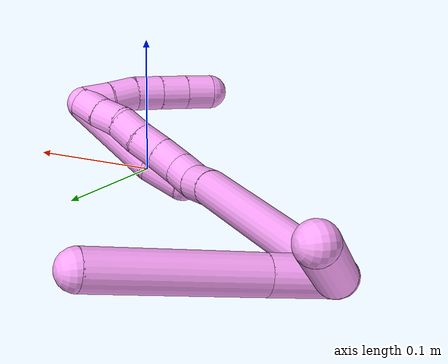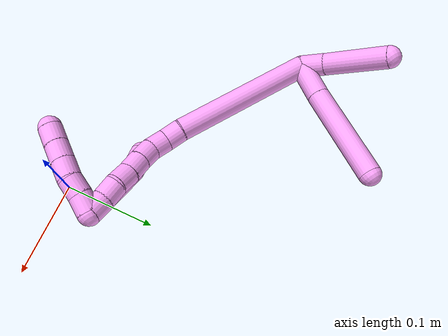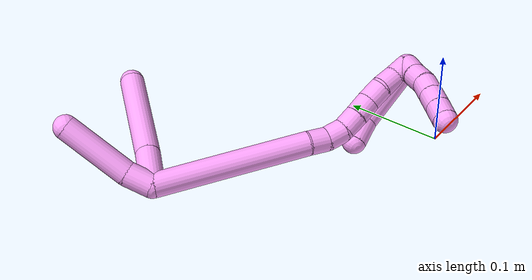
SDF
<sdf version="1.7">
 <world name="default">
  <model name="4">
   <static>0</static>
   <link name="4">
    <collision name="collision-cylinder-e_1_2_8">
     <pose>0.000494 -0.003559 0.021245 0.165994 0.022913 0.001906</pose>
     <geometry><cylinder><radius>0.0125</radius><length>0.043094</length></cylinder></geometry>
     <surface>
      <friction><ode><mu>1.16</mu><mu2>1.16</mu2><slip1>0</slip1><slip2>0</slip2></ode></friction>
      <contact><ode><kp>1e+06</kp><kd>1</kd><max_vel>0</max_vel><min_depth>0.001</min_depth></ode></contact>
     </surface>
    </collision>
    <visual name="visual-cylinder-e_1_2_8">
     <pose>0.000494 -0.003559 0.021245 0.165994 0.022913 0.001906</pose>
     <geometry><cylinder><radius>0.0125</radius><length>0.043094</length></cylinder></geometry>
     <material><ambient>1 0.65098 0.996078 1</ambient></material>
    </visual>
    <collision name="collision-cylinder-e_2_8_6">
     <pose>-0.0001 -0.014426 0.09543 0.137172 -0.020339 -0.001397</pose>
     <geometry><cylinder><radius>0.0125</radius><length>0.106906</length></cylinder></geometry>
     <surface>
      <friction><ode><mu>1.16</mu><mu2>1.16</mu2><slip1>0</slip1><slip2>0</slip2></ode></friction>
      <contact><ode><kp>1e+06</kp><kd>1</kd><max_vel>0</max_vel><min_depth>0.001</min_depth></ode></contact>
     </surface>
    </collision>
    <visual name="visual-cylinder-e_2_8_6">
     <pose>-0.0001 -0.014426 0.09543 0.137172 -0.020339 -0.001397</pose>
     <geometry><cylinder><radius>0.0125</radius><length>0.106906</length></cylinder></geometry>
     <material><ambient>1 0.65098 0.996078 1</ambient></material>
    </visual>
    <collision name="collision-cylinder-e_1_2_9">
     <pose>-0.009395 0.006274 0.007635 -0.687882 -0.76012 0.284242</pose>
     <geometry><cylinder><radius>0.0125</radius><length>0.027271</length></cylinder></geometry>
     <surface>
      <friction><ode><mu>1.16</mu><mu2>1.16</mu2><slip1>0</slip1><slip2>0</slip2></ode></friction>
      <contact><ode><kp>1e+06</kp><kd>1</kd><max_vel>0</max_vel><min_depth>0.001</min_depth></ode></contact>
     </surface>
    </collision>
    <visual name="visual-cylinder-e_1_2_9">
     <pose>-0.009395 0.006274 0.007635 -0.687882 -0.76012 0.284242</pose>
     <geometry><cylinder><radius>0.0125</radius><length>0.027271</length></cylinder></geometry>
     <material><ambient>1 0.65098 0.996078 1</ambient></material>
    </visual>
    <collision name="collision-cylinder-e_2_9_5">
     <pose>-0.046667 0.021715 0.036746 -0.403426 -0.873538 0.190355</pose>
     <geometry><cylinder><radius>0.0125</radius><length>0.072729</length></cylinder></geometry>
     <surface>
      <friction><ode><mu>1.16</mu><mu2>1.16</mu2><slip1>0</slip1><slip2>0</slip2></ode></friction>
      <contact><ode><kp>1e+06</kp><kd>1</kd><max_vel>0</max_vel><min_depth>0.001</min_depth></ode></contact>
     </surface>
    </collision>
    <visual name="visual-cylinder-e_2_9_5">
     <pose>-0.046667 0.021715 0.036746 -0.403426 -0.873538 0.190355</pose>
     <geometry><cylinder><radius>0.0125</radius><length>0.072729</length></cylinder></geometry>
     <material><ambient>1 0.65098 0.996078 1</ambient></material>
    </visual>
    <collision name="collision-cylinder-e_1_2_10">
     <pose>0.040491 -0.068853 4.9e-05 1.57009 0.531612 0.531254</pose>
     <geometry><cylinder><radius>0.0125</radius><length>0.159754</length></cylinder></geometry>
     <surface>
      <friction><ode><mu>1.16</mu><mu2>1.16</mu2><slip1>0</slip1><slip2>0</slip2></ode></friction>
      <contact><ode><kp>1e+06</kp><kd>1</kd><max_vel>0</max_vel><min_depth>0.001</min_depth></ode></contact>
     </surface>
    </collision>
    <visual name="visual-cylinder-e_1_2_10">
     <pose>0.040491 -0.068853 4.9e-05 1.57009 0.531612 0.531254</pose>
     <geometry><cylinder><radius>0.0125</radius><length>0.159754</length></cylinder></geometry>
     <material><ambient>1 0.65098 0.996078 1</ambient></material>
    </visual>
    <collision name="collision-cylinder-e_2_10_11">
     <pose>0.087037 -0.14579 0.00075 1.49028 0.641231 0.594556</pose>
     <geometry><cylinder><radius>0.0125</radius><length>0.020241</length></cylinder></geometry>
     <surface>
      <friction><ode><mu>1.16</mu><mu2>1.16</mu2><slip1>0</slip1><slip2>0</slip2></ode></friction>
      <contact><ode><kp>1e+06</kp><kd>1</kd><max_vel>0</max_vel><min_depth>0.001</min_depth></ode></contact>
     </surface>
    </collision>
    <visual name="visual-cylinder-e_2_10_11">
     <pose>0.087037 -0.14579 0.00075 1.49028 0.641231 0.594556</pose>
     <geometry><cylinder><radius>0.0125</radius><length>0.020241</length></cylinder></geometry>
     <material><ambient>1 0.65098 0.996078 1</ambient></material>
    </visual>
    <collision name="collision-cylinder-e_3_11_12">
     <pose>0.096584 -0.163145 0.002775 1.42379 0.356805 0.308694</pose>
     <geometry><cylinder><radius>0.0125</radius><length>0.020005</length></cylinder></geometry>
     <surface>
      <friction><ode><mu>1.16</mu><mu2>1.16</mu2><slip1>0</slip1><slip2>0</slip2></ode></friction>
      <contact><ode><kp>1e+06</kp><kd>1</kd><max_vel>0</max_vel><min_depth>0.001</min_depth></ode></contact>
     </surface>
    </collision>
    <visual name="visual-cylinder-e_3_11_12">
     <pose>0.096584 -0.163145 0.002775 1.42379 0.356805 0.308694</pose>
     <geometry><cylinder><radius>0.0125</radius><length>0.020005</length></cylinder></geometry>
     <material><ambient>1 0.65098 0.996078 1</ambient></material>
    </visual>
    <collision name="collision-cylinder-e_4_12_13">
     <pose>0.10154 -0.181457 0.008165 1.15268 0.146697 0.095445</pose>
     <geometry><cylinder><radius>0.0125</radius><length>0.02</length></cylinder></geometry>
     <surface>
      <friction><ode><mu>1.16</mu><mu2>1.16</mu2><slip1>0</slip1><slip2>0</slip2></ode></friction>
      <contact><ode><kp>1e+06</kp><kd>1</kd><max_vel>0</max_vel><min_depth>0.001</min_depth></ode></contact>
     </surface>
    </collision>
    <visual name="visual-cylinder-e_4_12_13">
     <pose>0.10154 -0.181457 0.008165 1.15268 0.146697 0.095445</pose>
     <geometry><cylinder><radius>0.0125</radius><length>0.02</length></cylinder></geometry>
     <material><ambient>1 0.65098 0.996078 1</ambient></material>
    </visual>
    <collision name="collision-cylinder-e_5_13_14">
     <pose>0.104513 -0.199317 0.016646 1.10216 0.151752 0.093377</pose>
     <geometry><cylinder><radius>0.0125</radius><length>0.02</length></cylinder></geometry>
     <surface>
      <friction><ode><mu>1.16</mu><mu2>1.16</mu2><slip1>0</slip1><slip2>0</slip2></ode></friction>
      <contact><ode><kp>1e+06</kp><kd>1</kd><max_vel>0</max_vel><min_depth>0.001</min_depth></ode></contact>
     </surface>
    </collision>
    <visual name="visual-cylinder-e_5_13_14">
     <pose>0.104513 -0.199317 0.016646 1.10216 0.151752 0.093377</pose>
     <geometry><cylinder><radius>0.0125</radius><length>0.02</length></cylinder></geometry>
     <material><ambient>1 0.65098 0.996078 1</ambient></material>
    </visual>
    <collision name="collision-cylinder-e_6_14_15">
     <pose>0.107292 -0.217354 0.024777 1.19227 0.127109 0.086303</pose>
     <geometry><cylinder><radius>0.0125</radius><length>0.02</length></cylinder></geometry>
     <surface>
      <friction><ode><mu>1.16</mu><mu2>1.16</mu2><slip1>0</slip1><slip2>0</slip2></ode></friction>
      <contact><ode><kp>1e+06</kp><kd>1</kd><max_vel>0</max_vel><min_depth>0.001</min_depth></ode></contact>
     </surface>
    </collision>
    <visual name="visual-cylinder-e_6_14_15">
     <pose>0.107292 -0.217354 0.024777 1.19227 0.127109 0.086303</pose>
     <geometry><cylinder><radius>0.0125</radius><length>0.02</length></cylinder></geometry>
     <material><ambient>1 0.65098 0.996078 1</ambient></material>
    </visual>
    <collision name="collision-cylinder-e_7_15_16">
     <pose>0.112304 -0.234854 0.032611 1.10449 0.383718 0.238258</pose>
     <geometry><cylinder><radius>0.0125</radius><length>0.02</length></cylinder></geometry>
     <surface>
      <friction><ode><mu>1.16</mu><mu2>1.16</mu2><slip1>0</slip1><slip2>0</slip2></ode></friction>
      <contact><ode><kp>1e+06</kp><kd>1</kd><max_vel>0</max_vel><min_depth>0.001</min_depth></ode></contact>
     </surface>
    </collision>
    <visual name="visual-cylinder-e_7_15_16">
     <pose>0.112304 -0.234854 0.032611 1.10449 0.383718 0.238258</pose>
     <geometry><cylinder><radius>0.0125</radius><length>0.02</length></cylinder></geometry>
     <material><ambient>1 0.65098 0.996078 1</ambient></material>
    </visual>
    <collision name="collision-cylinder-e_8_16_1">
     <pose>0.118789 -0.252008 0.040492 1.1746 0.277678 0.185501</pose>
     <geometry><cylinder><radius>0.0125</radius><length>0.02</length></cylinder></geometry>
     <surface>
      <friction><ode><mu>1.16</mu><mu2>1.16</mu2><slip1>0</slip1><slip2>0</slip2></ode></friction>
      <contact><ode><kp>1e+06</kp><kd>1</kd><max_vel>0</max_vel><min_depth>0.001</min_depth></ode></contact>
     </surface>
    </collision>
    <visual name="visual-cylinder-e_8_16_1">
     <pose>0.118789 -0.252008 0.040492 1.1746 0.277678 0.185501</pose>
     <geometry><cylinder><radius>0.0125</radius><length>0.02</length></cylinder></geometry>
     <material><ambient>1 0.65098 0.996078 1</ambient></material>
    </visual>
    <collision name="collision-cylinder-e_1_1_17">
     <pose>0.119636 -0.227432 0.029182 -1.99289 -0.051599 0.079712</pose>
     <geometry><cylinder><radius>0.0125</radius><length>0.073431</length></cylinder></geometry>
     <surface>
      <friction><ode><mu>1.16</mu><mu2>1.16</mu2><slip1>0</slip1><slip2>0</slip2></ode></friction>
      <contact><ode><kp>1e+06</kp><kd>1</kd><max_vel>0</max_vel><min_depth>0.001</min_depth></ode></contact>
     </surface>
    </collision>
    <visual name="visual-cylinder-e_1_1_17">
     <pose>0.119636 -0.227432 0.029182 -1.99289 -0.051599 0.079712</pose>
     <geometry><cylinder><radius>0.0125</radius><length>0.073431</length></cylinder></geometry>
     <material><ambient>1 0.65098 0.996078 1</ambient></material>
    </visual>
    <collision name="collision-cylinder-e_2_17_4">
     <pose>0.116766 -0.183607 0.005923 -2.24181 -0.073599 0.15218</pose>
     <geometry><cylinder><radius>0.0125</radius><length>0.026569</length></cylinder></geometry>
     <surface>
      <friction><ode><mu>1.16</mu><mu2>1.16</mu2><slip1>0</slip1><slip2>0</slip2></ode></friction>
      <contact><ode><kp>1e+06</kp><kd>1</kd><max_vel>0</max_vel><min_depth>0.001</min_depth></ode></contact>
     </surface>
    </collision>
    <visual name="visual-cylinder-e_2_17_4">
     <pose>0.116766 -0.183607 0.005923 -2.24181 -0.073599 0.15218</pose>
     <geometry><cylinder><radius>0.0125</radius><length>0.026569</length></cylinder></geometry>
     <material><ambient>1 0.65098 0.996078 1</ambient></material>
    </visual>
    <collision name="collision-cylinder-e_1_1_18">
     <pose>0.120119 -0.261347 0.034314 3.0944 -0.141521 -2.49874</pose>
     <geometry><cylinder><radius>0.0125</radius><length>0.02</length></cylinder></geometry>
     <surface>
      <friction><ode><mu>1.16</mu><mu2>1.16</mu2><slip1>0</slip1><slip2>0</slip2></ode></friction>
      <contact><ode><kp>1e+06</kp><kd>1</kd><max_vel>0</max_vel><min_depth>0.001</min_depth></ode></contact>
     </surface>
    </collision>
    <visual name="visual-cylinder-e_1_1_18">
     <pose>0.120119 -0.261347 0.034314 3.0944 -0.141521 -2.49874</pose>
     <geometry><cylinder><radius>0.0125</radius><length>0.02</length></cylinder></geometry>
     <material><ambient>1 0.65098 0.996078 1</ambient></material>
    </visual>
    <collision name="collision-cylinder-e_2_18_19">
     <pose>0.117724 -0.263285 0.014583 2.99327 -0.09863 -1.17271</pose>
     <geometry><cylinder><radius>0.0125</radius><length>0.02</length></cylinder></geometry>
     <surface>
      <friction><ode><mu>1.16</mu><mu2>1.16</mu2><slip1>0</slip1><slip2>0</slip2></ode></friction>
      <contact><ode><kp>1e+06</kp><kd>1</kd><max_vel>0</max_vel><min_depth>0.001</min_depth></ode></contact>
     </surface>
    </collision>
    <visual name="visual-cylinder-e_2_18_19">
     <pose>0.117724 -0.263285 0.014583 2.99327 -0.09863 -1.17271</pose>
     <geometry><cylinder><radius>0.0125</radius><length>0.02</length></cylinder></geometry>
     <material><ambient>1 0.65098 0.996078 1</ambient></material>
    </visual>
    <collision name="collision-cylinder-e_3_19_20">
     <pose>0.11598 -0.263926 -0.005196 -3.05833 -0.076064 1.4804</pose>
     <geometry><cylinder><radius>0.0125</radius><length>0.02</length></cylinder></geometry>
     <surface>
      <friction><ode><mu>1.16</mu><mu2>1.16</mu2><slip1>0</slip1><slip2>0</slip2></ode></friction>
      <contact><ode><kp>1e+06</kp><kd>1</kd><max_vel>0</max_vel><min_depth>0.001</min_depth></ode></contact>
     </surface>
    </collision>
    <visual name="visual-cylinder-e_3_19_20">
     <pose>0.11598 -0.263926 -0.005196 -3.05833 -0.076064 1.4804</pose>
     <geometry><cylinder><radius>0.0125</radius><length>0.02</length></cylinder></geometry>
     <material><ambient>1 0.65098 0.996078 1</ambient></material>
    </visual>
    <collision name="collision-cylinder-e_4_20_21">
     <pose>0.114486 -0.262251 -0.025069 -3.05663 -0.073432 1.42531</pose>
     <geometry><cylinder><radius>0.0125</radius><length>0.02</length></cylinder></geometry>
     <surface>
      <friction><ode><mu>1.16</mu><mu2>1.16</mu2><slip1>0</slip1><slip2>0</slip2></ode></friction>
      <contact><ode><kp>1e+06</kp><kd>1</kd><max_vel>0</max_vel><min_depth>0.001</min_depth></ode></contact>
     </surface>
    </collision>
    <visual name="visual-cylinder-e_4_20_21">
     <pose>0.114486 -0.262251 -0.025069 -3.05663 -0.073432 1.42531</pose>
     <geometry><cylinder><radius>0.0125</radius><length>0.02</length></cylinder></geometry>
     <material><ambient>1 0.65098 0.996078 1</ambient></material>
    </visual>
    <collision name="collision-cylinder-e_5_21_3">
     <pose>0.113044 -0.260409 -0.044932 -3.04158 -0.070918 1.23325</pose>
     <geometry><cylinder><radius>0.0125</radius><length>0.02</length></cylinder></geometry>
     <surface>
      <friction><ode><mu>1.16</mu><mu2>1.16</mu2><slip1>0</slip1><slip2>0</slip2></ode></friction>
      <contact><ode><kp>1e+06</kp><kd>1</kd><max_vel>0</max_vel><min_depth>0.001</min_depth></ode></contact>
     </surface>
    </collision>
    <visual name="visual-cylinder-e_5_21_3">
     <pose>0.113044 -0.260409 -0.044932 -3.04158 -0.070918 1.23325</pose>
     <geometry><cylinder><radius>0.0125</radius><length>0.02</length></cylinder></geometry>
     <material><ambient>1 0.65098 0.996078 1</ambient></material>
    </visual>
    <collision name="collision-sphere-3">
     <pose>0.112335 -0.259413 -0.054857 0 -0 0</pose>
     <geometry><sphere><radius>0.0125</radius></sphere></geometry>
     <surface>
      <friction><ode><mu>1.16</mu><mu2>1.16</mu2><slip1>0</slip1><slip2>0</slip2></ode></friction>
      <contact><ode><kp>1e+06</kp><kd>1</kd><max_vel>0</max_vel><min_depth>0.001</min_depth></ode></contact>
     </surface>
    </collision>
    <visual name="visual-sphere-3">
     <pose>0.112335 -0.259413 -0.054857 0 -0 0</pose>
     <geometry><sphere><radius>0.0125</radius></sphere></geometry>
     <material><ambient>1 0.65098 0.996078 1</ambient></material>
    </visual>
    <collision name="collision-sphere-21">
     <pose>0.113752 -0.261405 -0.035007 0 -0 0</pose>
     <geometry><sphere><radius>0.0125</radius></sphere></geometry>
     <surface>
      <friction><ode><mu>1.16</mu><mu2>1.16</mu2><slip1>0</slip1><slip2>0</slip2></ode></friction>
      <contact><ode><kp>1e+06</kp><kd>1</kd><max_vel>0</max_vel><min_depth>0.001</min_depth></ode></contact>
     </surface>
    </collision>
    <visual name="visual-sphere-21">
     <pose>0.113752 -0.261405 -0.035007 0 -0 0</pose>
     <geometry><sphere><radius>0.0125</radius></sphere></geometry>
     <material><ambient>1 0.65098 0.996078 1</ambient></material>
    </visual>
    <collision name="collision-sphere-20">
     <pose>0.11522 -0.263097 -0.015132 0 -0 0</pose>
     <geometry><sphere><radius>0.0125</radius></sphere></geometry>
     <surface>
      <friction><ode><mu>1.16</mu><mu2>1.16</mu2><slip1>0</slip1><slip2>0</slip2></ode></friction>
      <contact><ode><kp>1e+06</kp><kd>1</kd><max_vel>0</max_vel><min_depth>0.001</min_depth></ode></contact>
     </surface>
    </collision>
    <visual name="visual-sphere-20">
     <pose>0.11522 -0.263097 -0.015132 0 -0 0</pose>
     <geometry><sphere><radius>0.0125</radius></sphere></geometry>
     <material><ambient>1 0.65098 0.996078 1</ambient></material>
    </visual>
    <collision name="collision-sphere-19">
     <pose>0.11674 -0.264756 0.004741 0 -0 0</pose>
     <geometry><sphere><radius>0.0125</radius></sphere></geometry>
     <surface>
      <friction><ode><mu>1.16</mu><mu2>1.16</mu2><slip1>0</slip1><slip2>0</slip2></ode></friction>
      <contact><ode><kp>1e+06</kp><kd>1</kd><max_vel>0</max_vel><min_depth>0.001</min_depth></ode></contact>
     </surface>
    </collision>
    <visual name="visual-sphere-19">
     <pose>0.11674 -0.264756 0.004741 0 -0 0</pose>
     <geometry><sphere><radius>0.0125</radius></sphere></geometry>
     <material><ambient>1 0.65098 0.996078 1</ambient></material>
    </visual>
    <collision name="collision-sphere-10">
     <pose>0.080983 -0.137706 9.7e-05 0 -0 0</pose>
     <geometry><sphere><radius>0.0125</radius></sphere></geometry>
     <surface>
      <friction><ode><mu>1.16</mu><mu2>1.16</mu2><slip1>0</slip1><slip2>0</slip2></ode></friction>
      <contact><ode><kp>1e+06</kp><kd>1</kd><max_vel>0</max_vel><min_depth>0.001</min_depth></ode></contact>
     </surface>
    </collision>
    <visual name="visual-sphere-10">
     <pose>0.080983 -0.137706 9.7e-05 0 -0 0</pose>
     <geometry><sphere><radius>0.0125</radius></sphere></geometry>
     <material><ambient>1 0.65098 0.996078 1</ambient></material>
    </visual>
    <collision name="collision-sphere-5">
     <pose>-0.074544 0.030882 0.058222 0 -0 0</pose>
     <geometry><sphere><radius>0.0125</radius></sphere></geometry>
     <surface>
      <friction><ode><mu>1.16</mu><mu2>1.16</mu2><slip1>0</slip1><slip2>0</slip2></ode></friction>
      <contact><ode><kp>1e+06</kp><kd>1</kd><max_vel>0</max_vel><min_depth>0.001</min_depth></ode></contact>
     </surface>
    </collision>
    <visual name="visual-sphere-5">
     <pose>-0.074544 0.030882 0.058222 0 -0 0</pose>
     <geometry><sphere><radius>0.0125</radius></sphere></geometry>
     <material><ambient>1 0.65098 0.996078 1</ambient></material>
    </visual>
    <collision name="collision-sphere-6">
     <pose>-0.001187 -0.021734 0.14837 0 -0 0</pose>
     <geometry><sphere><radius>0.0125</radius></sphere></geometry>
     <surface>
      <friction><ode><mu>1.16</mu><mu2>1.16</mu2><slip1>0</slip1><slip2>0</slip2></ode></friction>
      <contact><ode><kp>1e+06</kp><kd>1</kd><max_vel>0</max_vel><min_depth>0.001</min_depth></ode></contact>
     </surface>
    </collision>
    <visual name="visual-sphere-6">
     <pose>-0.001187 -0.021734 0.14837 0 -0 0</pose>
     <geometry><sphere><radius>0.0125</radius></sphere></geometry>
     <material><ambient>1 0.65098 0.996078 1</ambient></material>
    </visual>
    <collision name="collision-sphere-9">
     <pose>-0.01879 0.012549 0.01527 0 -0 0</pose>
     <geometry><sphere><radius>0.0125</radius></sphere></geometry>
     <surface>
      <friction><ode><mu>1.16</mu><mu2>1.16</mu2><slip1>0</slip1><slip2>0</slip2></ode></friction>
      <contact><ode><kp>1e+06</kp><kd>1</kd><max_vel>0</max_vel><min_depth>0.001</min_depth></ode></contact>
     </surface>
    </collision>
    <visual name="visual-sphere-9">
     <pose>-0.01879 0.012549 0.01527 0 -0 0</pose>
     <geometry><sphere><radius>0.0125</radius></sphere></geometry>
     <material><ambient>1 0.65098 0.996078 1</ambient></material>
    </visual>
    <collision name="collision-sphere-2">
     <geometry><sphere><radius>0.0125</radius></sphere></geometry>
     <surface>
      <friction><ode><mu>1.16</mu><mu2>1.16</mu2><slip1>0</slip1><slip2>0</slip2></ode></friction>
      <contact><ode><kp>1e+06</kp><kd>1</kd><max_vel>0</max_vel><min_depth>0.001</min_depth></ode></contact>
     </surface>
    </collision>
    <visual name="visual-sphere-2">
     <geometry><sphere><radius>0.0125</radius></sphere></geometry>
     <material><ambient>1 0.65098 0.996078 1</ambient></material>
    </visual>
    <collision name="collision-sphere-8">
     <pose>0.000987 -0.007119 0.04249 0 -0 0</pose>
     <geometry><sphere><radius>0.0125</radius></sphere></geometry>
     <surface>
      <friction><ode><mu>1.16</mu><mu2>1.16</mu2><slip1>0</slip1><slip2>0</slip2></ode></friction>
      <contact><ode><kp>1e+06</kp><kd>1</kd><max_vel>0</max_vel><min_depth>0.001</min_depth></ode></contact>
     </surface>
    </collision>
    <visual name="visual-sphere-8">
     <pose>0.000987 -0.007119 0.04249 0 -0 0</pose>
     <geometry><sphere><radius>0.0125</radius></sphere></geometry>
     <material><ambient>1 0.65098 0.996078 1</ambient></material>
    </visual>
    <collision name="collision-sphere-11">
     <pose>0.09309 -0.153874 0.001402 0 -0 0</pose>
     <geometry><sphere><radius>0.0125</radius></sphere></geometry>
     <surface>
      <friction><ode><mu>1.16</mu><mu2>1.16</mu2><slip1>0</slip1><slip2>0</slip2></ode></friction>
      <contact><ode><kp>1e+06</kp><kd>1</kd><max_vel>0</max_vel><min_depth>0.001</min_depth></ode></contact>
     </surface>
    </collision>
    <visual name="visual-sphere-11">
     <pose>0.09309 -0.153874 0.001402 0 -0 0</pose>
     <geometry><sphere><radius>0.0125</radius></sphere></geometry>
     <material><ambient>1 0.65098 0.996078 1</ambient></material>
    </visual>
    <collision name="collision-sphere-12">
     <pose>0.100078 -0.172416 0.004148 0 -0 0</pose>
     <geometry><sphere><radius>0.0125</radius></sphere></geometry>
     <surface>
      <friction><ode><mu>1.16</mu><mu2>1.16</mu2><slip1>0</slip1><slip2>0</slip2></ode></friction>
      <contact><ode><kp>1e+06</kp><kd>1</kd><max_vel>0</max_vel><min_depth>0.001</min_depth></ode></contact>
     </surface>
    </collision>
    <visual name="visual-sphere-12">
     <pose>0.100078 -0.172416 0.004148 0 -0 0</pose>
     <geometry><sphere><radius>0.0125</radius></sphere></geometry>
     <material><ambient>1 0.65098 0.996078 1</ambient></material>
    </visual>
    <collision name="collision-sphere-13">
     <pose>0.103001 -0.190498 0.012181 0 -0 0</pose>
     <geometry><sphere><radius>0.0125</radius></sphere></geometry>
     <surface>
      <friction><ode><mu>1.16</mu><mu2>1.16</mu2><slip1>0</slip1><slip2>0</slip2></ode></friction>
      <contact><ode><kp>1e+06</kp><kd>1</kd><max_vel>0</max_vel><min_depth>0.001</min_depth></ode></contact>
     </surface>
    </collision>
    <visual name="visual-sphere-13">
     <pose>0.103001 -0.190498 0.012181 0 -0 0</pose>
     <geometry><sphere><radius>0.0125</radius></sphere></geometry>
     <material><ambient>1 0.65098 0.996078 1</ambient></material>
    </visual>
    <collision name="collision-sphere-14">
     <pose>0.106025 -0.208137 0.021111 0 -0 0</pose>
     <geometry><sphere><radius>0.0125</radius></sphere></geometry>
     <surface>
      <friction><ode><mu>1.16</mu><mu2>1.16</mu2><slip1>0</slip1><slip2>0</slip2></ode></friction>
      <contact><ode><kp>1e+06</kp><kd>1</kd><max_vel>0</max_vel><min_depth>0.001</min_depth></ode></contact>
     </surface>
    </collision>
    <visual name="visual-sphere-14">
     <pose>0.106025 -0.208137 0.021111 0 -0 0</pose>
     <geometry><sphere><radius>0.0125</radius></sphere></geometry>
     <material><ambient>1 0.65098 0.996078 1</ambient></material>
    </visual>
    <collision name="collision-sphere-15">
     <pose>0.10856 -0.226571 0.028443 0 -0 0</pose>
     <geometry><sphere><radius>0.0125</radius></sphere></geometry>
     <surface>
      <friction><ode><mu>1.16</mu><mu2>1.16</mu2><slip1>0</slip1><slip2>0</slip2></ode></friction>
      <contact><ode><kp>1e+06</kp><kd>1</kd><max_vel>0</max_vel><min_depth>0.001</min_depth></ode></contact>
     </surface>
    </collision>
    <visual name="visual-sphere-15">
     <pose>0.10856 -0.226571 0.028443 0 -0 0</pose>
     <geometry><sphere><radius>0.0125</radius></sphere></geometry>
     <material><ambient>1 0.65098 0.996078 1</ambient></material>
    </visual>
    <collision name="collision-sphere-16">
     <pose>0.116048 -0.243136 0.03678 0 -0 0</pose>
     <geometry><sphere><radius>0.0125</radius></sphere></geometry>
     <surface>
      <friction><ode><mu>1.16</mu><mu2>1.16</mu2><slip1>0</slip1><slip2>0</slip2></ode></friction>
      <contact><ode><kp>1e+06</kp><kd>1</kd><max_vel>0</max_vel><min_depth>0.001</min_depth></ode></contact>
     </surface>
    </collision>
    <visual name="visual-sphere-16">
     <pose>0.116048 -0.243136 0.03678 0 -0 0</pose>
     <geometry><sphere><radius>0.0125</radius></sphere></geometry>
     <material><ambient>1 0.65098 0.996078 1</ambient></material>
    </visual>
    <collision name="collision-sphere-1">
     <pose>0.12153 -0.26088 0.044203 0 -0 0</pose>
     <geometry><sphere><radius>0.0125</radius></sphere></geometry>
     <surface>
      <friction><ode><mu>1.16</mu><mu2>1.16</mu2><slip1>0</slip1><slip2>0</slip2></ode></friction>
      <contact><ode><kp>1e+06</kp><kd>1</kd><max_vel>0</max_vel><min_depth>0.001</min_depth></ode></contact>
     </surface>
    </collision>
    <visual name="visual-sphere-1">
     <pose>0.12153 -0.26088 0.044203 0 -0 0</pose>
     <geometry><sphere><radius>0.0125</radius></sphere></geometry>
     <material><ambient>1 0.65098 0.996078 1</ambient></material>
    </visual>
    <collision name="collision-sphere-18">
     <pose>0.118709 -0.261815 0.024425 0 -0 0</pose>
     <geometry><sphere><radius>0.0125</radius></sphere></geometry>
     <surface>
      <friction><ode><mu>1.16</mu><mu2>1.16</mu2><slip1>0</slip1><slip2>0</slip2></ode></friction>
      <contact><ode><kp>1e+06</kp><kd>1</kd><max_vel>0</max_vel><min_depth>0.001</min_depth></ode></contact>
     </surface>
    </collision>
    <visual name="visual-sphere-18">
     <pose>0.118709 -0.261815 0.024425 0 -0 0</pose>
     <geometry><sphere><radius>0.0125</radius></sphere></geometry>
     <material><ambient>1 0.65098 0.996078 1</ambient></material>
    </visual>
    <collision name="collision-sphere-17">
     <pose>0.117743 -0.193983 0.014161 0 -0 0</pose>
     <geometry><sphere><radius>0.0125</radius></sphere></geometry>
     <surface>
      <friction><ode><mu>1.16</mu><mu2>1.16</mu2><slip1>0</slip1><slip2>0</slip2></ode></friction>
      <contact><ode><kp>1e+06</kp><kd>1</kd><max_vel>0</max_vel><min_depth>0.001</min_depth></ode></contact>
     </surface>
    </collision>
    <visual name="visual-sphere-17">
     <pose>0.117743 -0.193983 0.014161 0 -0 0</pose>
     <geometry><sphere><radius>0.0125</radius></sphere></geometry>
     <material><ambient>1 0.65098 0.996078 1</ambient></material>
    </visual>
    <collision name="collision-sphere-4">
     <pose>0.115789 -0.173231 -0.002315 0 -0 0</pose>
     <geometry><sphere><radius>0.0125</radius></sphere></geometry>
     <surface>
      <friction><ode><mu>1.16</mu><mu2>1.16</mu2><slip1>0</slip1><slip2>0</slip2></ode></friction>
      <contact><ode><kp>1e+06</kp><kd>1</kd><max_vel>0</max_vel><min_depth>0.001</min_depth></ode></contact>
     </surface>
    </collision>
    <visual name="visual-sphere-4">
     <pose>0.115789 -0.173231 -0.002315 0 -0 0</pose>
     <geometry><sphere><radius>0.0125</radius></sphere></geometry>
     <material><ambient>1 0.65098 0.996078 1</ambient></material>
    </visual>
    <inertial>
     <pose>0.054568 -0.11555 0.024406 0 -0 0</pose>
     <mass>0.75</mass>
     <inertia>
      <ixx>0.000609</ixx>
      <ixy>0</ixy>
      <ixz>0</ixz>
      <iyy>0.000376</iyy>
      <iyz>0</iyz>
      <izz>0.000141</izz>
     </inertia>
    </inertial>
   </link>
   <pose>-0.236584 0.176236 0.011446 -1.47214 0.976657 -0.514935</pose>
  </model>
 </world>
</sdf>
